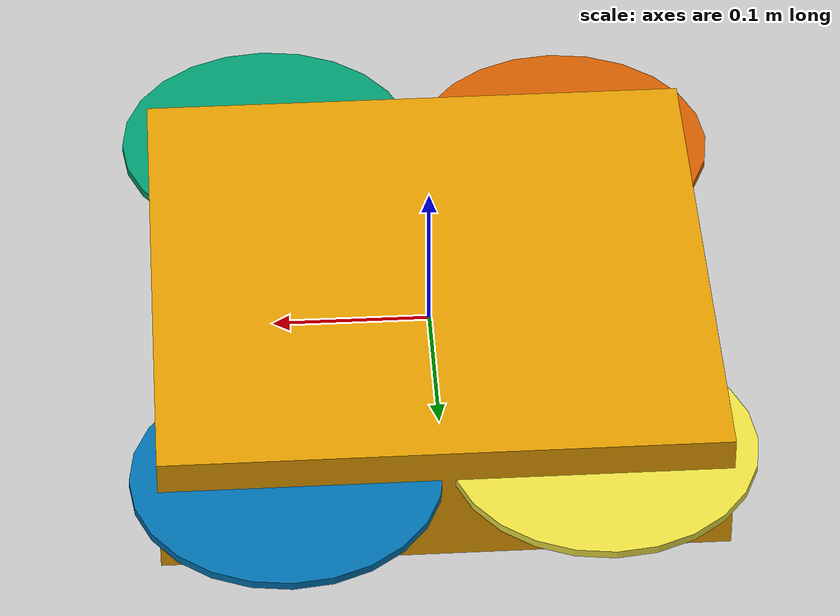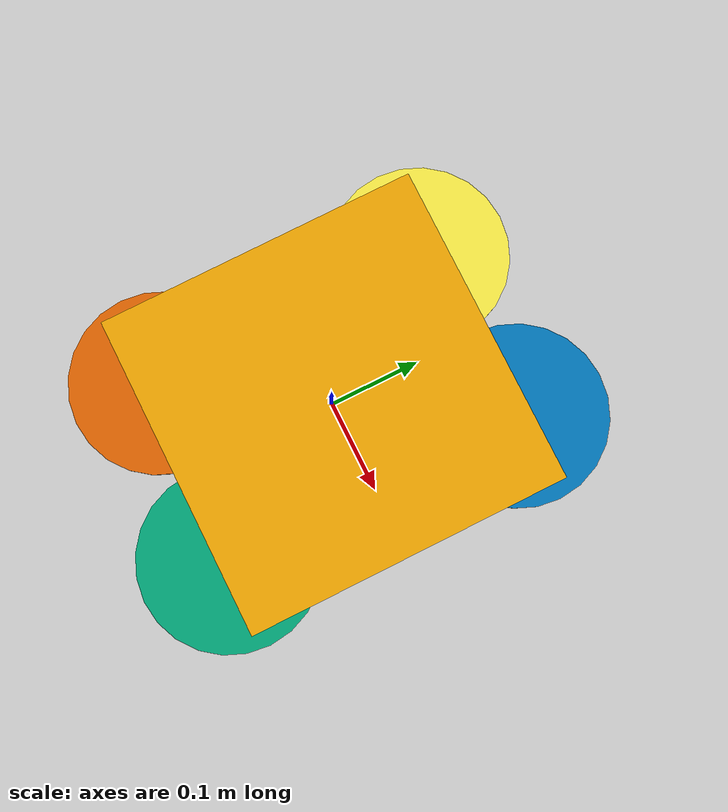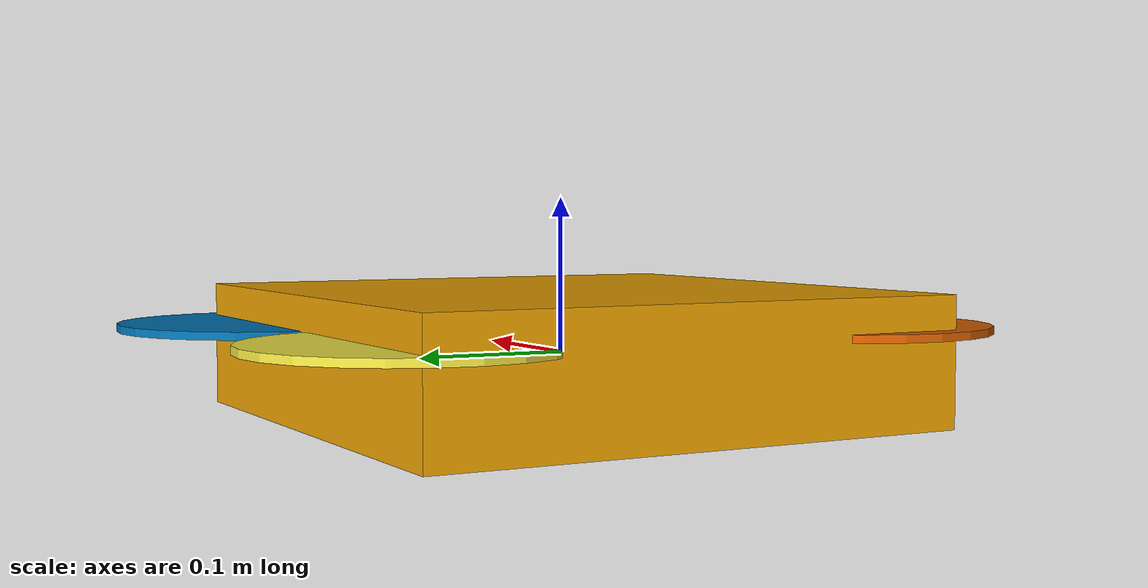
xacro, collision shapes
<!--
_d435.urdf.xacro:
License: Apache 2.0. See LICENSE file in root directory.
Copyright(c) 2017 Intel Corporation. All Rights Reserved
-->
<?xml version="1.0"?>
<robot xmlns:xacro="http://www.ros.org/wiki/xacro" name="iris">

  <xacro:arg name="scale" default="0.75"/>
  <xacro:arg name="stl_path" default="mavlink_sitl_gazebo/models/iris/meshes"/>
  <xacro:property name="scale" value="$(arg scale)" />
  <xacro:property name="stl_path" value="$(arg stl_path)" />
  <xacro:include filename="$(find rtabmap_drone_example)/urdf/drone.gazebo"/>

   <link name='base_link'>
      <inertial>
        <origin xyz="0 0 0" rpy="0 0 0"/>
        <mass value="${1.5 * scale}"/>
        <inertia
	  ixx="${0.0347563 * scale}" ixy="0.0" ixz="0.0"
	  iyy="${0.0458929 * scale}" iyz="0.0"
	  izz="${0.0977 * scale}"/>
      </inertial>
      <collision>
        <origin xyz="0 0 0" rpy="0 0 0"/>
        <geometry>
          <box size="${0.47*scale} ${0.47*scale} ${0.11*scale}"/>
        </geometry>
      </collision>
      <visual>
        <origin xyz="0 0 0" rpy="0 0 0"/>
        <geometry>
          <mesh scale="${scale} ${scale} ${scale}" filename="package://${stl_path}/iris.stl"/>
        </geometry>
      </visual>
      <gravity>1</gravity>
      <velocity_decay/>
    </link>

    <link name='imu_link'>
      <inertial>
        <origin xyz="0 0 0" rpy="0 0 0"/>
        <mass value="0.015"/>
        <inertia
	  ixx="1e-05" ixy="0.0" ixz="0.0"
	  iyy="1e-05" iyz="0.0"
	  izz="1e-05"/>
      </inertial>
    </link>
    <joint name='imu_joint' type='revolute'>
      <parent link="base_link"/>
      <child link="imu_link"/>
      <origin xyz="0 0 0" rpy="0 0 0"/>
      <axis xyz="0 1 0"/>
      <limit lower="0" upper="0" effort="0" velocity="0"/>
    </joint>
    <link name='rotor_0'>
      <inertial>
        <origin xyz="0 0 0" rpy="0 0 0"/>
        <mass value="${0.005 * scale}"/>
        <inertia
	  ixx="9.75e-07" ixy="0.0" ixz="0.0"
	  iyy="0.000273104" iyz="0.0"
	  izz="0.000274004"/>
      </inertial>
      <collision name='rotor_0_collision'>
        <origin xyz="0 0 0" rpy="0 0 0"/>
        <geometry>
          <cylinder length="0.005" radius="${scale*0.128}"/>
        </geometry>
        <surface>
          <contact>
            <ode/>
          </contact>
          <friction>
            <ode/>
          </friction>
        </surface>
      </collision>
      <visual name='rotor_0_visual'>
        <origin xyz="0 0 0" rpy="0 0 0"/>
        <geometry>
          <mesh scale="${scale} ${scale} ${scale}" filename="package://${stl_path}/iris_prop_ccw.dae"/>
        </geometry>
      </visual>
      <gravity>1</gravity>
      <velocity_decay/>
    </link>
    <joint name='rotor_0_joint' type='revolute'>
      <parent link="base_link"/>
      <child link="rotor_0"/>
      <origin xyz="${scale*0.13} ${scale*-0.22} ${scale*0.023}" rpy="0 0 0"/>
      <axis xyz="0 0 1"/>
      <limit lower="-1e+16" upper="1e+16" effort="0" velocity="0"/>
    </joint>
    <link name='rotor_1'>
      <inertial>
        <origin xyz="0 0 0" rpy="0 0 0"/>
        <mass value="${0.005 * scale}"/>
        <inertia
	  ixx="9.75e-07" ixy="0.0" ixz="0.0"
	  iyy="0.000273104" iyz="0.0"
	  izz="0.000274004"/>
      </inertial>
      <collision name='rotor_1_collision'>
        <origin xyz="0 0 0" rpy="0 0 0"/>
        <geometry>
          <cylinder length="0.005" radius="${scale*0.128}"/>
        </geometry>
        <surface>
          <contact>
            <ode/>
          </contact>
          <friction>
            <ode/>
          </friction>
        </surface>
      </collision>
      <visual name='rotor_1_visual'>
        <origin xyz="0 0 0" rpy="0 0 0"/>
        <geometry>
          <mesh scale="${scale} ${scale} ${scale}" filename="package://${stl_path}/iris_prop_ccw.dae"/>
        </geometry>
      </visual>
      <gravity>1</gravity>
      <velocity_decay/>
    </link>
    <joint name='rotor_1_joint' type='revolute'>
      <parent link="base_link"/>
      <child link="rotor_1"/>
      <origin xyz="${scale*-0.13} ${scale*0.2} ${scale*0.023}" rpy="0 0 0"/>
      <axis xyz="0 0 1"/>
      <limit lower="-1e+16" upper="1e+16" effort="0" velocity="0"/>
    </joint>
    <link name='rotor_2'>
      <inertial>
        <origin xyz="0 0 0" rpy="0 0 0"/>
        <mass value="${0.005 * scale}"/>
        <inertia
	  ixx="9.75e-07" ixy="0.0" ixz="0.0"
	  iyy="0.000273104" iyz="0.0"
	  izz="0.000274004"/>
      </inertial>
      <collision name='rotor_2_collision'>
        <origin xyz="0 0 0" rpy="0 0 0"/>
        <geometry>
          <cylinder length="0.005" radius="${scale*0.128}"/>
        </geometry>
        <surface>
          <contact>
            <ode/>
          </contact>
          <friction>
            <ode/>
          </friction>
        </surface>
      </collision>
      <visual name='rotor_2_visual'>
        <origin xyz="0 0 0" rpy="0 0 0"/>
        <geometry>
          <mesh scale="${scale} ${scale} ${scale}" filename="package://${stl_path}/iris_prop_cw.dae"/>
        </geometry>
      </visual>
      <gravity>1</gravity>
      <velocity_decay/>
    </link>
    <joint name='rotor_2_joint' type='revolute'>
      <parent link="base_link"/>
      <child link="rotor_2"/>
      <origin xyz="${scale*0.13} ${scale*0.22} ${scale*0.023}" rpy="0 0 0"/>
      <axis xyz="0 0 1"/>
      <limit lower="-1e+16" upper="1e+16" effort="0" velocity="0"/>
    </joint>
    <link name='rotor_3'>
      <inertial>
        <origin xyz="0 0 0" rpy="0 0 0"/>
        <mass value="${0.005 * scale}"/>
        <inertia
	  ixx="9.75e-07" ixy="0.0" ixz="0.0"
	  iyy="0.000273104" iyz="0.0"
	  izz="0.000274004"/>
      </inertial>
      <collision name='rotor_3_collision'>
        <origin xyz="0 0 0" rpy="0 0 0"/>
        <geometry>
          <cylinder length="0.005" radius="${scale*0.128}"/>
        </geometry>
        <surface>
          <contact>
            <ode/>
          </contact>
          <friction>
            <ode/>
          </friction>
        </surface>
      </collision>
      <visual name='rotor_3_visual'>
        <origin xyz="0 0 0" rpy="0 0 0"/>
        <geometry>
          <mesh scale="${scale} ${scale} ${scale}" filename="package://${stl_path}/iris_prop_cw.dae"/>
        </geometry>
      </visual>
      <gravity>1</gravity>
      <velocity_decay/>
    </link>
    <joint name='rotor_3_joint' type='revolute'>
      <parent link="base_link"/>
      <child link="rotor_3"/>
      <origin xyz="${scale*-0.13} ${scale*-0.2} ${scale*0.023}" rpy="0 0 0"/>
      <axis xyz="0 0 1"/>
      <limit lower="-1e+16" upper="1e+16" effort="0" velocity="0"/>
    </joint>

  <joint name="imu_body_joint" type="fixed">
    <origin xyz="0.0 0 0.0" rpy="0 0 0" />
    <parent link="base_link"/>
    <child link="imu_body_link" />
  </joint>
  <link name='imu_body_link'>
     <inertial>
       <origin xyz="0 0 0" rpy="0 0 0"/>
       <mass value="0.00001"/>
       <inertia
	  ixx="1e-05" ixy="0.0" ixz="0.0"
	  iyy="1e-05" iyz="0.0"
	  izz="1e-05"/>
       </inertial>
  </link>
  <gazebo reference="imu_body_link">
      <sensor name="imu_body_sensor" type="imu">
        <plugin filename="libgazebo_ros_imu_sensor.so" name="imu_body_plugin">
          <topicName>body_imu/data_raw</topicName>
          <bodyName>imu_body_link</bodyName>
          <updateRateHZ>100</updateRateHZ>
          <gaussianNoise>0.01</gaussianNoise>
          <xyzOffset>0 0 0</xyzOffset>
          <rpyOffset>0 0 0</rpyOffset>
          <frameName>imu_body_link</frameName>
        </plugin>
      </sensor>
  </gazebo>

  <!-- Include d435i xacro file -->
  <xacro:include filename="$(find rtabmap_drone_example)/urdf/_d435.urdf.xacro"/>

</robot>

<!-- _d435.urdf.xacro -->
<robot name="sensor_d435" xmlns:xacro="http://ros.org/wiki/xacro">
  <!--File includes-->
  <xacro:include filename="_d435.gazebo.xacro"/>

  <xacro:macro name="sensor_d435" params="name:=camera topics_ns:=camera parent *origin publish_pointcloud:=true">
    <xacro:property name="M_PI" value="3.1415926535897931" />

    <!-- The following values are approximate, and the camera node
     publishing TF values with actual calibrated camera extrinsic values -->
    <xacro:property name="d435_cam_depth_to_left_ir_offset" value="0.0"/>
    <xacro:property name="d435_cam_depth_to_right_ir_offset" value="-0.050"/>
    <xacro:property name="d435_cam_depth_to_color_offset" value="0.015"/>

    <!-- The following values model the aluminum peripherial case for the
    D435 camera, with the camera joint represented by the actual
    peripherial camera tripod mount -->
    <xacro:property name="d435_cam_width" value="0.090"/>
    <xacro:property name="d435_cam_height" value="0.025"/>
    <xacro:property name="d435_cam_depth" value="0.02505"/>
    <xacro:property name="d435_cam_mount_from_center_offset" value="0.0149"/>

    <!-- The following offset is relative the the physical D435 camera peripherial
    camera tripod mount -->
    <xacro:property name="d435_cam_depth_px" value="${d435_cam_mount_from_center_offset}"/>
    <xacro:property name="d435_cam_depth_py" value="0.0175"/>
    <xacro:property name="d435_cam_depth_pz" value="${d435_cam_height/2}"/>

    <material name="${name}_aluminum">
    <color rgba="0 0 0 1"/>
    </material>

    <!-- camera body, with origin at bottom screw mount -->
    <joint name="${name}_joint" type="fixed">
      <xacro:insert_block name="origin" />
      <parent link="${parent}"/>
      <child link="${name}_bottom_screw_frame" />
    </joint>
    <link name="${name}_bottom_screw_frame"/>

    <joint name="${name}_link_joint" type="fixed">
      <origin xyz="0 ${d435_cam_depth_py} ${d435_cam_depth_pz}" rpy="0 0 0"/>
      <parent link="${name}_bottom_screw_frame"/>
      <child link="${name}_link" />
    </joint>

    <link name="${name}_link">
      <visual>
      <origin xyz="${d435_cam_mount_from_center_offset} ${-d435_cam_depth_py} 0" rpy="${M_PI/2} 0 ${M_PI/2}"/>
        <geometry>
          <box size="${d435_cam_width} ${d435_cam_height} ${d435_cam_depth}"/>
        </geometry>
        <material name="${name}_aluminum"/>
      </visual>
      <collision>
        <origin xyz="0 ${-d435_cam_depth_py} 0" rpy="0 0 0"/>
        <geometry>
        <box size="${d435_cam_depth} ${d435_cam_width} ${d435_cam_height}"/>
        </geometry>
      </collision>
      <inertial>
        <!-- The following are not reliable values, and should not be used for modeling -->
        <mass value="0.564" />
        <origin xyz="0 0 0" />
        <inertia ixx="0.003881243" ixy="0.0" ixz="0.0" iyy="0.000498940" iyz="0.0" izz="0.003879257" />
      </inertial>
    </link>

    <!-- camera depth joints and links -->
    <joint name="${name}_depth_joint" type="fixed">
      <origin xyz="0 0 0" rpy="0 0 0"/>
      <parent link="${name}_link"/>
      <child link="${name}_depth_frame" />
    </joint>
    <link name="${name}_depth_frame"/>

    <joint name="${name}_depth_optical_joint" type="fixed">
      <origin xyz="0 0 0" rpy="${-M_PI/2} 0 ${-M_PI/2}" />
      <parent link="${name}_depth_frame" />
      <child link="${name}_depth_optical_frame" />
    </joint>
    <link name="${name}_depth_optical_frame"/>

    <!-- camera left IR joints and links -->
    <joint name="${name}_left_ir_joint" type="fixed">
      <origin xyz="0 ${d435_cam_depth_to_left_ir_offset} 0" rpy="0 0 0" />
      <parent link="${name}_depth_frame" />
      <child link="${name}_left_ir_frame" />
    </joint>
    <link name="${name}_left_ir_frame"/>

    <joint name="${name}_left_ir_optical_joint" type="fixed">
      <origin xyz="0 0 0" rpy="${-M_PI/2} 0 ${-M_PI/2}" />
      <parent link="${name}_left_ir_frame" />
      <child link="${name}_left_ir_optical_frame" />
    </joint>
    <link name="${name}_left_ir_optical_frame"/>

    <!-- camera right IR joints and links -->
    <joint name="${name}_right_ir_joint" type="fixed">
      <origin xyz="0 ${d435_cam_depth_to_right_ir_offset} 0" rpy="0 0 0" />
      <parent link="${name}_depth_frame" />
      <child link="${name}_right_ir_frame" />
    </joint>
    <link name="${name}_right_ir_frame"/>

    <joint name="${name}_right_ir_optical_joint" type="fixed">
      <origin xyz="0 0 0" rpy="${-M_PI/2} 0 ${-M_PI/2}" />
      <parent link="${name}_right_ir_frame" />
      <child link="${name}_right_ir_optical_frame" />
    </joint>
    <link name="${name}_right_ir_optical_frame"/>

    <!-- camera color joints and links -->
    <joint name="${name}_color_joint" type="fixed">
      <origin xyz="0 ${d435_cam_depth_to_color_offset} 0" rpy="0 0 0" />
      <parent link="${name}_depth_frame" />
      <child link="${name}_color_frame" />
    </joint>
    <link name="${name}_color_frame"/>

    <joint name="${name}_color_optical_joint" type="fixed">
      <origin xyz="0 0 0" rpy="${-M_PI/2} 0 ${-M_PI/2}" />
      <parent link="${name}_color_frame" />
      <child link="${name}_color_optical_frame" />
    </joint>
    <link name="${name}_color_optical_frame"/>

    <!-- Realsense Gazebo Plugin -->
    <xacro:gazebo_d435 camera_name="${name}" reference_link="${name}_link" topics_ns="${topics_ns}" depth_optical_frame="${name}_depth_optical_frame" color_optical_frame="${name}_color_optical_frame" infrared1_optical_frame="${name}_left_ir_optical_frame" infrared2_optical_frame="${name}_right_ir_optical_frame" publish_pointcloud="${publish_pointcloud}"/>

  </xacro:macro>

  <xacro:sensor_d435 name="realsense_d435" topics_ns="camera" parent="base_link" >
    <origin xyz="0.075 0 0" rpy="0 0 0" />
  </xacro:sensor_d435>

</robot>
